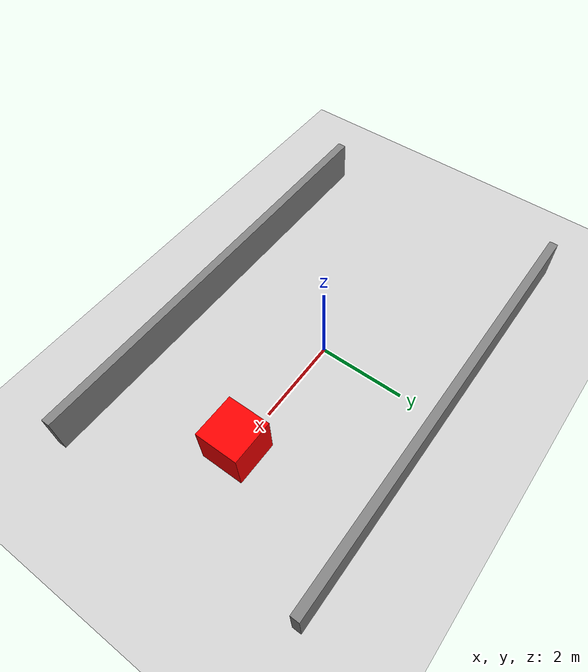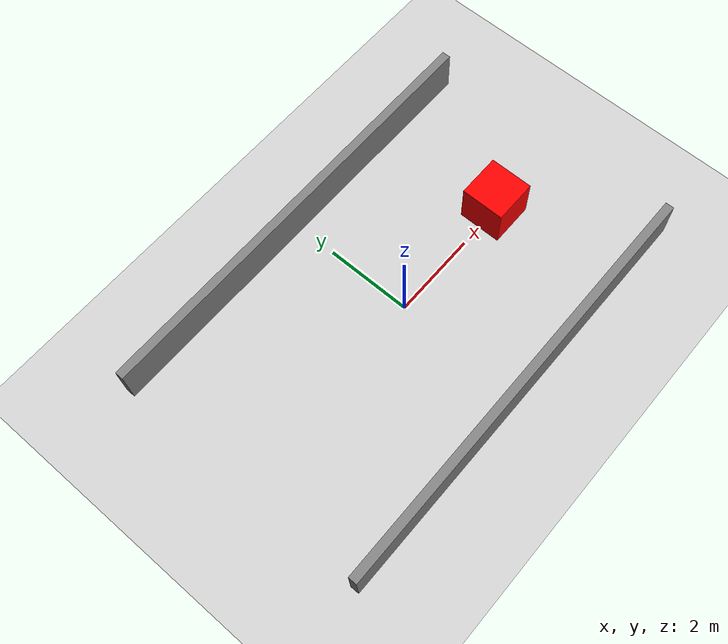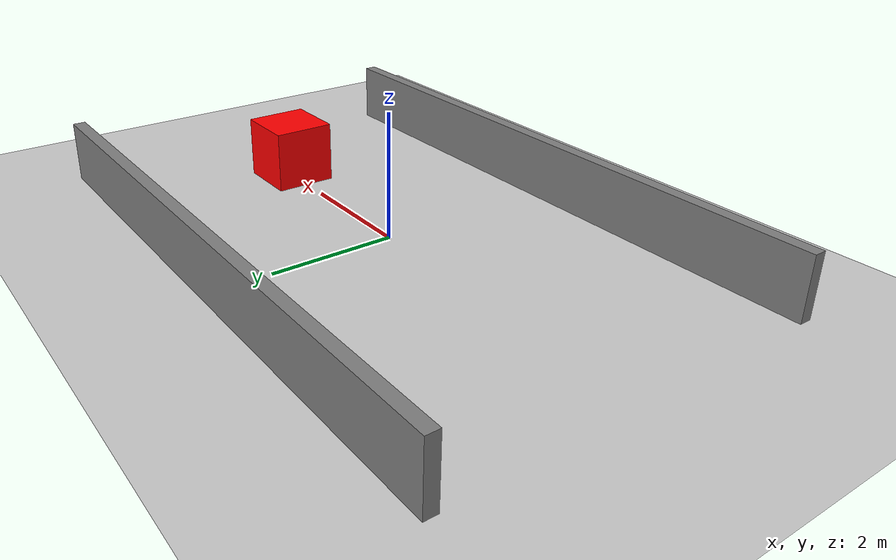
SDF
<?xml version="1.0" ?>
<sdf version="1.9">
  <world name="default">
    <plugin filename="gz-sim-physics-system" name="gz::sim::systems::Physics"/>
    <plugin filename="gz-sim-user-commands-system" name="gz::sim::systems::UserCommands"/>
    <plugin filename="gz-sim-scene-broadcaster-system" name="gz::sim::systems::SceneBroadcaster"/>
    <plugin filename="gz-sim-sensors-system" name="gz::sim::systems::Sensors">
      <render_engine>ogre2</render_engine>
    </plugin>

    <!-- Ground plane -->
    <model name="ground_plane">
      <static>true</static>
      <pose>0 0 0 0 0 0</pose>
      <link name="link">
        <collision name="collision">
          <geometry><plane><normal>0 0 1</normal><size>100 100</size></plane></geometry>
        </collision>
        <visual name="visual">
          <geometry><plane><normal>0 0 1</normal><size>100 100</size></plane></geometry>
          <material><ambient>0.8 0.8 0.8 1</ambient></material>
        </visual>
      </link>
    </model>

    <!-- Sun -->
    <light type="directional" name="sun">
      <cast_shadows>true</cast_shadows>
      <pose>0 0 10 0 0 0</pose>
      <diffuse>1 1 1 1</diffuse>
      <specular>0.5 0.5 0.5 1</specular>
      <direction>-0.5 0.1 -0.9</direction>
    </light>

    <!-- Simple box in front of robot spawn point -->
    <model name="test_box">
      <static>true</static>
      <pose>3 0 0.5 0 0 0</pose>
      <link name="link">
        <collision name="collision">
          <geometry><box><size>1 1 1</size></box></geometry>
        </collision>
        <visual name="visual">
          <geometry><box><size>1 1 1</size></box></geometry>
          <material><ambient>1 0 0 1</ambient><diffuse>1 0 0 1</diffuse></material>
        </visual>
      </link>
    </model>

    <!-- Walls around the test area -->
    <model name="wall_left">
      <static>true</static>
      <pose>0 -3 0.5 0 0 0</pose>
      <link name="link">
        <collision name="collision">
          <geometry><box><size>10 0.2 1</size></box></geometry>
        </collision>
        <visual name="visual">
          <geometry><box><size>10 0.2 1</size></box></geometry>
          <material><ambient>0.5 0.5 0.5 1</ambient></material>
        </visual>
      </link>
    </model>

    <model name="wall_right">
      <static>true</static>
      <pose>0 3 0.5 0 0 0</pose>
      <link name="link">
        <collision name="collision">
          <geometry><box><size>10 0.2 1</size></box></geometry>
        </collision>
        <visual name="visual">
          <geometry><box><size>10 0.2 1</size></box></geometry>
          <material><ambient>0.5 0.5 0.5 1</ambient></material>
        </visual>
      </link>
    </model>

  </world>
</sdf>
